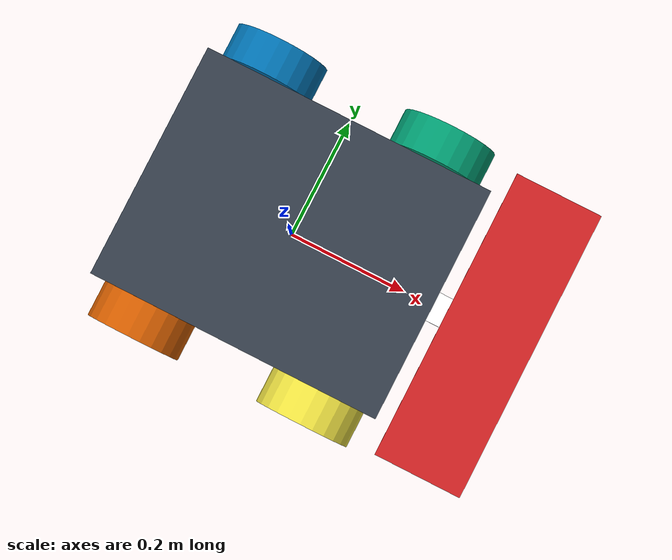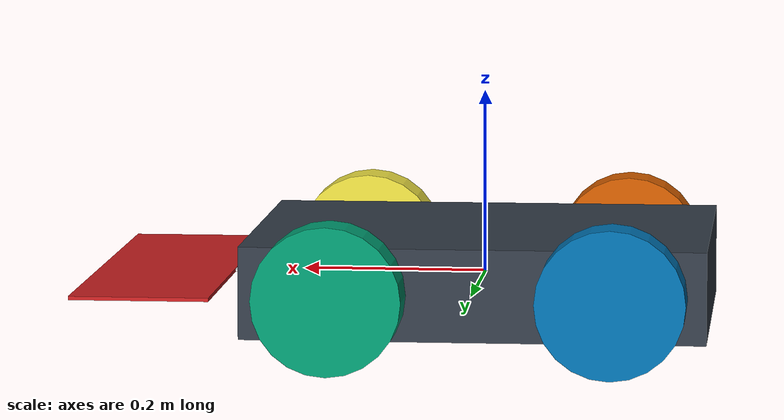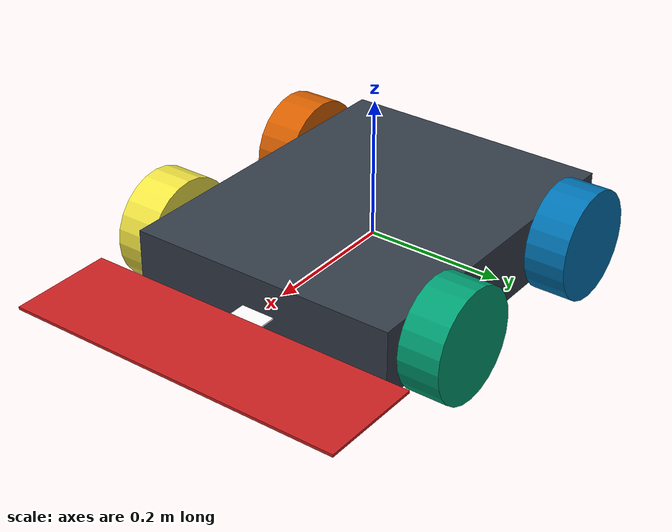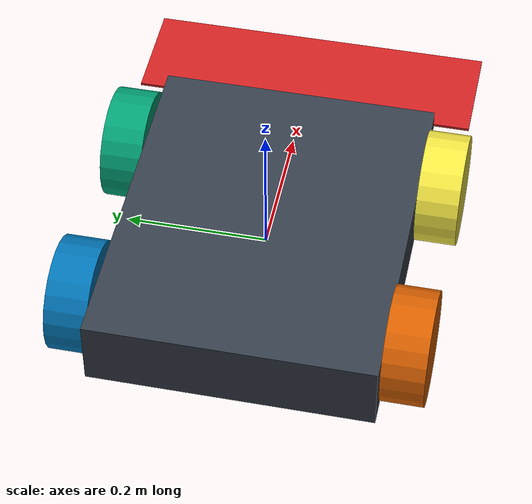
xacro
<?xml version="1.0" ?>
<robot name="robot_mine" xmlns:xacro="http://www.ros.org/wiki/xacro">

  <xacro:include filename="$(find master_robot)/urdf/robot.gazebo" />
  <xacro:include filename="$(find master_robot)/urdf/wheel.xacro" />
  <xacro:include filename="$(find master_robot)/urdf/imu_model.urdf.xacro" />

  <link name="link_chassis">
    <!-- pose and inertial -->
    <pose>0 0 0.1 0 0 0</pose>
    <inertial>
      <mass value="11"/>
      <origin rpy="0 0 0" xyz="0 0 0.1"/>
      <inertia ixx="0.1558333333" ixy="0" ixz="0" iyy="0.2383333333" iyz="0" izz="0.3758333333"/>
    </inertial>
    <!-- body -->
    <collision name="collision_chassis">
      <geometry>
        <box size="0.5 0.4 0.1"/>
      </geometry>
    </collision>
    <visual>
      <origin rpy="0 0 0" xyz="0 0 0"/>
      <geometry>
        <box size="0.5 0.4 0.1"/>
      </geometry>
      <material name="blue">
        <color rgba="0.203125 0.23828125 0.28515625 1.0"/>
      </material>
    </visual>
    <!-- metal_detector-->

    <collision name="metal_detector_bar">
      <geometry>
        <box size="0.2 0.05 0.0025"/>
      </geometry>
    </collision>
    <visual>
      <origin rpy="0 0 0" xyz="0.25 0 0"/>
      <geometry>
        <box size="0.2 0.05 0.0025"/>
      </geometry>
      <material name="white">
        <color rgba="1.0 1.0 1.0 1.0"/>
      </material>
    </visual>
    <collision name="metal_detector_holder">
      <geometry>
        <box size="0.15 0.5 0.004"/>
      </geometry>
    </collision>
    <visual>
      <origin rpy="0 0 0" xyz="0.35 0 0"/>
      <geometry>
        <box size="0.15 0.5 0.004"/>
      </geometry>
      <material name="red">
        <color rgba="0.80078125 0.12890625 0.1328125 1.0"/>
      </material>
    </visual>
  </link>

<xacro:imu_sensor xyz="0 0 0" rpy="0 0 0" parent="link_chassis" />

 <!--front-->
  <xacro:link_wheel name="link_front_right_wheel" />
  <xacro:joint_wheel name="joint_front_right_wheel" child="link_front_right_wheel" origin_xyz="0.15 0.23 0" />

  <xacro:link_wheel name="link_front_left_wheel" />
  <xacro:joint_wheel name="joint_front_left_wheel" child="link_front_left_wheel" origin_xyz="0.15 -0.23 0" />
   <!--back-->

  <xacro:link_wheel name="link_back_right_wheel" />
  <xacro:joint_wheel name="joint_back_right_wheel" child="link_back_right_wheel" origin_xyz="-0.15 0.23 0" />

  <xacro:link_wheel name="link_back_left_wheel" />
  <xacro:joint_wheel name="joint_back_left_wheel" child="link_back_left_wheel" origin_xyz="-0.15 -0.23 0" />

</robot>

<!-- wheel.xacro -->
<robot xmlns:xacro="http://www.ros.org/wiki/xacro">
    <xacro:macro name="link_wheel" params="name">
        <link name="${name}">
            <inertial>
              <mass value="1"/>
              <origin rpy="0 1.5707 1.5707" xyz="0 0 0"/>
              <inertia ixx="0.0019" ixy="0" ixz="0" iyy="0.0019" iyz="0" izz="0.0032"/>
            </inertial>
            <collision name="link_right_wheel_collision">
              <origin rpy="0 1.5707 1.5707" xyz="0 0 0"/>
              <geometry>
                <cylinder length="0.06" radius="0.08"/>
              </geometry>
            </collision>
            <visual name="${name}_visual">
              <origin rpy="0 1.5707 1.5707" xyz="0 0 0"/>
              <geometry>
                <cylinder length="0.06" radius="0.08"/>
              </geometry>
            </visual>
        </link>
    </xacro:macro>

    <xacro:macro name="joint_wheel" params="name child origin_xyz">
      <joint name="${name}" type="continuous">
        <origin rpy="0 0 0" xyz="${origin_xyz}"/>
        <child link="${child}"/>
        <parent link="link_chassis"/>
        <axis rpy="0 0 0" xyz="0 1 0"/>
        <limit effort="10000" velocity="1000"/>
        <joint_properties damping="1.0" friction="1.0"/>
      </joint>
      <transmission name="simple_trans">
  	<type>transmission_interface/SimpleTransmission</type>
  	<joint name="${name}">
    	<hardwareInterface>EffortJointInterface</hardwareInterface>
  	</joint>
  	<actuator name="${name}_motor">
    	<mechanicalReduction>50</mechanicalReduction>
    	<hardwareInterface>EffortJointInterface</hardwareInterface>
  	</actuator>
      </transmission>
    </xacro:macro>
    <xacro:macro name="cylinder_inertia" params="mass r l">
	  <inertia  ixx="${mass*(3*r*r+l*l)/12}" ixy = "0" ixz = "0"
		    iyy="${mass*(3*r*r+l*l)/12}" iyz = "0"
		    izz="${mass*(r*r)/2}" />
    </xacro:macro>
</robot>

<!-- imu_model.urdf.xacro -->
<robot xmlns:xacro="http://www.ros.org/wiki/xacro" name="imu">
<xacro:include filename="$(find master_robot)/urdf/materials.xacro" />

<xacro:macro name="imu_sensor" params="xyz rpy parent">
    <joint name="imu_sensor_joint" type="fixed">
        <axis xyz="0 0 1" />
        <origin xyz="${xyz}" rpy="${rpy}"/>
        <parent link="${parent}"/>
        <child link="imu_link"/>
    </joint>

    <link name="imu_link">
        <collision>
            <origin xyz="0 0 0" rpy="0 0 0"/>
            <geometry>
                <box size="0.02 0.02 0.02"/>
            </geometry>
        </collision>
        <visual>
            <origin xyz="0 0 0" rpy="0 0 0"/>
            <geometry>
                <box size="0.02 0.02 0.02"/>
            </geometry>
            <material name="red"/>
        </visual>
        <inertial>
            <mass value="0.001" />
            <origin xyz="0 0 0" rpy="0 0 0"/>
            <inertia ixx="0.00000015" ixy="0" ixz="0" iyy="0.00000015" iyz="0" izz="0.00000015" />
        </inertial>
    </link>

    <gazebo reference="imu_link">
        <gravity>true</gravity>
        <sensor name='imu_sensor' type='imu'>
            <always_on>1</always_on>
            <update_rate>1000</update_rate>
            <visualize>1</visualize>
            <topic>__default_topic__</topic>
            <plugin name='imu_plugin' filename='libgazebo_ros_imu_sensor.so'>
                <topicName>imu_data</topicName>
                <bodyName>imu_sensor_link</bodyName>
                <updateRateHZ>10.0</updateRateHZ>
                <gaussianNoise>0.0</gaussianNoise>
                <xyzOffset>0 0 0</xyzOffset>
                <rpyOffset>0 0 0</rpyOffset>
            </plugin>
            <pose>0 0 0 0 0 0</pose>
        </sensor>
    </gazebo>

</xacro:macro>

</robot>
